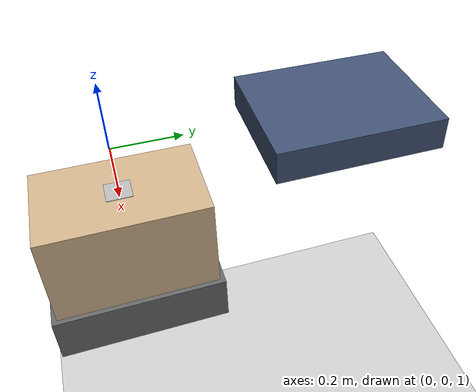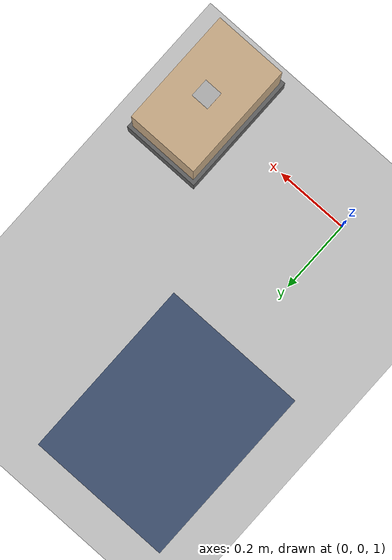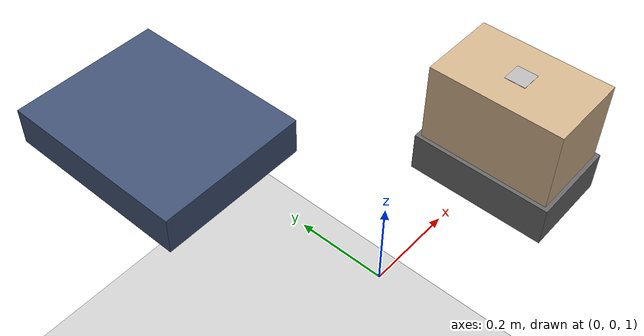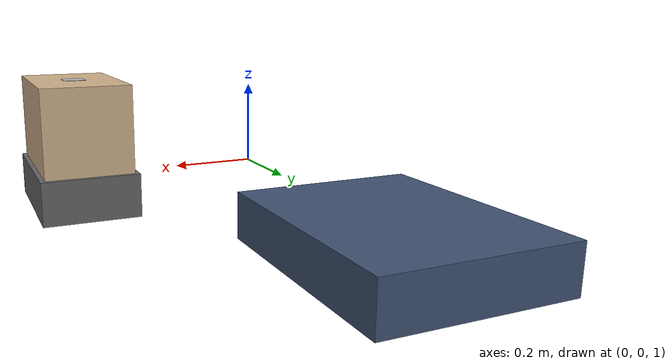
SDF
<?xml version="1.0" ?>
<sdf version="1.4">
  <!-- We use a custom world for the rrbot so that the camera angle is launched correctly -->

  <world name="default">
    <physics name="ode_1khz" type="ode">
      <max_step_size>0.001</max_step_size>
      <real_time_update_rate>1000</real_time_update_rate>
      <real_time_factor>1.0</real_time_factor>
      <ode>
        <solver>
          <type>quick</type>
          <iters>100</iters>
          <sor>1.3</sor>
        </solver>
      </ode>
    </physics>
    <include>
      <uri>model://ground_plane</uri>
    </include>

    <!-- 허리 회전 후 내려놓기 확인용 옆 책상 -->
    <model name="side_table">
      <static>true</static>
      <pose>0.00 0.65 0.98 0 0 0</pose>
      <link name="link">
        <collision name="collision"><geometry><box><size>0.40 0.50 0.10</size></box></geometry></collision>
        <visual name="visual"><geometry><box><size>0.40 0.50 0.10</size></box></geometry>
          <material><ambient>0.20 0.25 0.35 1</ambient><diffuse>0.25 0.32 0.45 1</diffuse></material>
        </visual>
      </link>
    </model>

    <!-- Global light source -->
    <include>
      <uri>model://sun</uri>
    </include>

    <!-- Graspable pick object: 10x10x10cm box with a 5cm ArUco id=26 marker facing the head
         camera. dynamic(model.sdf) - held by real friction/impedance grasp, not kinematic attach. -->
    <include>
      <uri>model://aruco_box_26</uri>
      <name>aruco_box_26</name>
      <pose>0.45 0.0 1.13 0 0 0</pose>
    </include>

    <!-- pick 지점 전용 소형 받침대: 물체 발판(10x10cm)보다 살짝 큰 12x12cm, 상판 z=1.15(기존 테이블
         높이와 동일). 파지 전(LOCATE+APPROACH) 동안만 물체를 떠받치는 용도 - 팔은 물체 바로 위/옆으로만
         접근하므로 이 작은 받침대와 충돌할 일이 없다. -->
    <model name="pick_pedestal">
      <static>true</static>
      <pose>0.45 0.0 0.98 0 0 0</pose>
      <link name="link">
        <collision name="collision">
          <geometry>
            <box><size>0.22 0.34 0.10</size></box>
          </geometry>
        </collision>
        <visual name="visual">
          <geometry>
            <box><size>0.22 0.34 0.10</size></box>
          </geometry>
          <material>
            <ambient>0.4 0.4 0.4 1</ambient>
            <diffuse>0.4 0.4 0.4 1</diffuse>
          </material>
        </visual>
      </link>
    </model>

    <!-- Focus camera on tall pendulum -->
    <gui fullscreen='0'>
      <camera name='user_camera'>
        <pose>4.927360 -4.376610 3.740080 0.000000 0.275643 2.356190</pose>
        <view_controller>orbit</view_controller>
      </camera>
    </gui>

  </world>
</sdf>

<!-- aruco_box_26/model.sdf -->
<sdf version="1.6">
  <model name="aruco_box_26">
    <!-- dynamic: 양팔이 y축 양쪽에서 표면 안쪽 5mm를 스퀴즈(grasp_offset, main.cpp)한 상태로
         PHASE_GRASP_TO_PLACE 구간에서 어드미턴스 제어(F/T 센서 피드백)를 유지하면
         마찰(mu=2.5)로 실제 접촉 파지가 이루어진다. 더 이상 pose를 강제로 갱신하지 않는다. -->
    <static>false</static>
    <link name="link">
      <inertial>
        <mass>0.10</mass>
        <!-- 0.20 x 0.32 x 0.20m solid box. -->
        <inertia>
          <ixx>0.001187</ixx>
          <ixy>0</ixy>
          <ixz>0</ixz>
          <iyy>0.000667</iyy>
          <iyz>0</iyz>
          <izz>0.001187</izz>
        </inertia>
      </inertial>

      <collision name="collision">
        <geometry>
          <box>
            <size>0.2 0.32 0.2</size>
          </box>
        </geometry>
        <surface>
          <friction>
            <ode>
              <mu>2.5</mu>
              <mu2>2.5</mu2>
              <kp>100000.0</kp>
              <kd>30.0</kd>
            </ode>
          </friction>
        </surface>
      </collision>

      <visual name="visual_box">
        <geometry>
          <box>
            <size>0.2 0.32 0.2</size>
          </box>
        </geometry>
        <material>
          <ambient>0.82 0.70 0.55 1</ambient>
          <diffuse>0.82 0.70 0.55 1</diffuse>
        </material>
      </visual>

      <visual name="visual_marker_26">
        <pose>0 0 0.1005 0 0 0</pose>
        <geometry>
          <box>
            <size>0.05 0.05 0.001</size>
          </box>
        </geometry>
        <material>
          <script>
            <uri>model://aruco_marker_26/materials/scripts</uri>
            <uri>model://aruco_marker_26/materials/textures</uri>
            <name>Aruco/Marker26</name>
          </script>
        </material>
      </visual>
    </link>
  </model>
</sdf>
